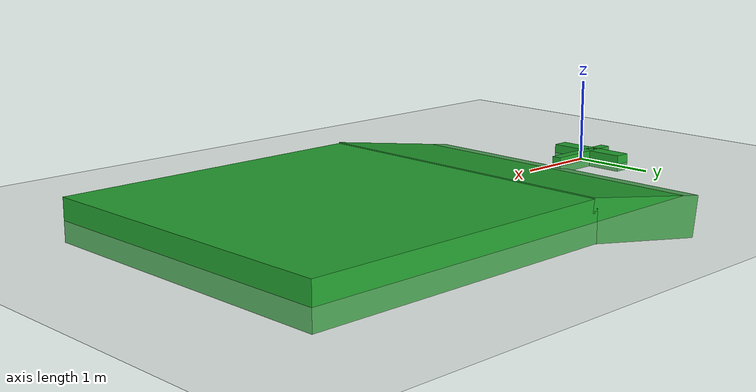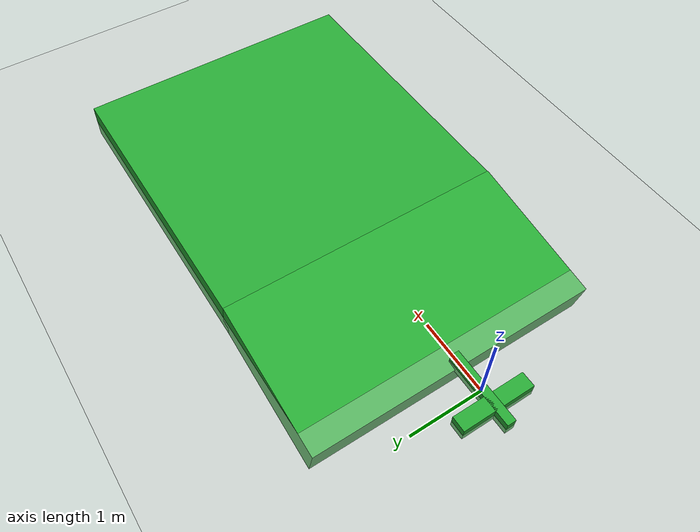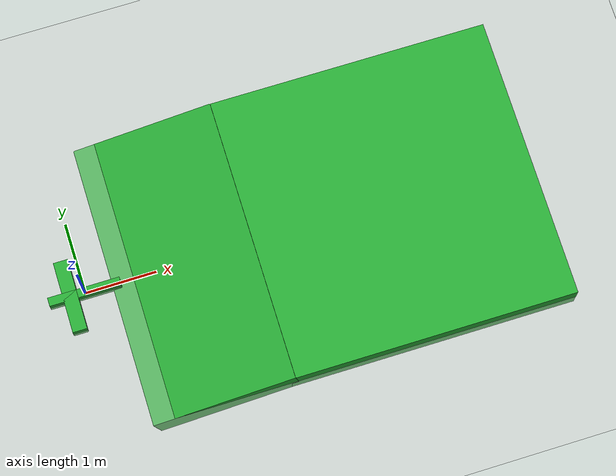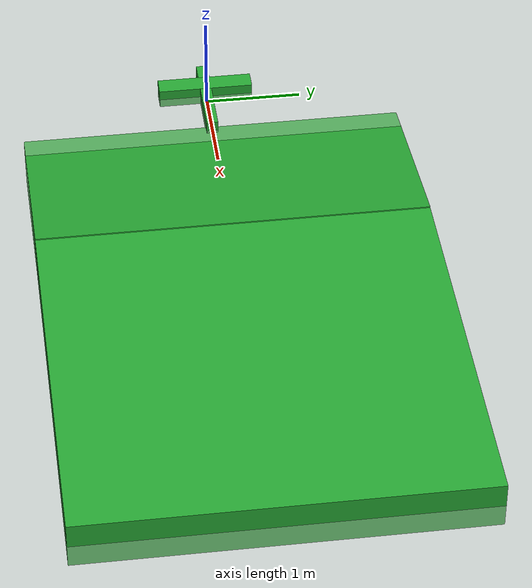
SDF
<?xml version="1.0" ?>

<sdf version="1.5">
    <world name="default">
        <!-- Target real time factor is the product of max_step_size and real_time_update_rate -->
        <!-- Negative real_time_update_rate means that Gazebo will run as fast as possible -->
        <physics type="ode">
            <type>world</type>
            <max_step_size>0.001</max_step_size>
            <real_time_update_rate>1000</real_time_update_rate>
            <iters>500</iters>
        </physics>
        <!-- A global light source -->
        <include>
            <uri>model://sun</uri>
        </include>
        <!-- A ground plane -->
        <include>
            <uri>model://ground_plane</uri>
        </include>
        <model name="pole">
                <static>true</static>
                <link name="link_mid">
                    <collision name="collision">
                        <geometry>
                            <box>
                                <size>1 0.12 0.2</size>
                            </box>
                        </geometry>
                        <pose>0 0 0 0 0 0</pose>
                    </collision>
                    <visual name="visual">
                        <geometry>
                            <box>
                                <size>1 0.12 0.2</size>
                            </box>
                        </geometry>
                        <material>
                            <script>
                                <uri>file://media/materials/scripts/gazebo.material</uri>
                                <name>Gazebo/Green</name>
                            </script>
                        </material>
                        <pose>0 0 0 0 0 0</pose>
                    </visual>
                    <pose>0 0 0 0 0 0</pose>
                </link>
                <link name="link_back">
                    <collision name="collision">
                        <geometry>
                            <box>
                                <size>0.2 1 0.2</size>
                            </box>
                        </geometry>
                        <pose>-0.1 0 0 0 0 0</pose>
                    </collision>
                    <visual name="visual">
                        <geometry>
                            <box>
                                <size>0.2 1 0.2</size>
                            </box>
                        </geometry>
                        <material>
                            <script>
                                <uri>file://media/materials/scripts/gazebo.material</uri>
                                <name>Gazebo/Green</name>
                            </script>
                        </material>
                        <pose>-0.1 0 0 0 0 0</pose>
                    </visual>
                    <pose>-0.1 0 0 0 0 0</pose>
                </link>
                <link name="ramp">
                    <collision name="collision">
                        <geometry>
                            <box>
                                <size>2 4 0.5</size>
                            </box>
                        </geometry>
                        <pose>0.7 0 -0.1 0 -0.08 0</pose>
                    </collision>
                    <visual name="visual">
                        <geometry>
                            <box>
                                <size>2 4 0.5</size>
                            </box>
                        </geometry>
                        <material>
                            <script>
                                <uri>file://media/materials/scripts/gazebo.material</uri>
                                <name>Gazebo/Green</name>
                            </script>
                        </material>
                        <pose>0.7 0 -0.1 0 -0.08 0</pose>
                    </visual>
                    <pose>0.7 0 -0.1 0 -0.08 0</pose> <!-- Rotation for ramp angle -->
                </link>
                <link name="platform">
                      <collision name="collision">
                        <geometry>
                          <box>
                            <size>4 4 0.5</size>
                          </box>
                        </geometry>
                        <pose>2.15 0 0 0 0 0</pose>
                      </collision>
                      <visual name="visual">
                        <geometry>
                          <box>
                            <size>4 4 0.5</size>
                          </box>
                        </geometry>
                        <material>
                          <script>
                            <uri>file://media/materials/scripts/gazebo.material</uri>
                            <name>Gazebo/Green</name>
                          </script>
                        </material>
                        <pose>2.15 0 0 0 0 0</pose>
                      </visual>
                      <pose>2.15 0 0 0 0 0</pose>
                    </link>
            </model>

    </world>
</sdf>
